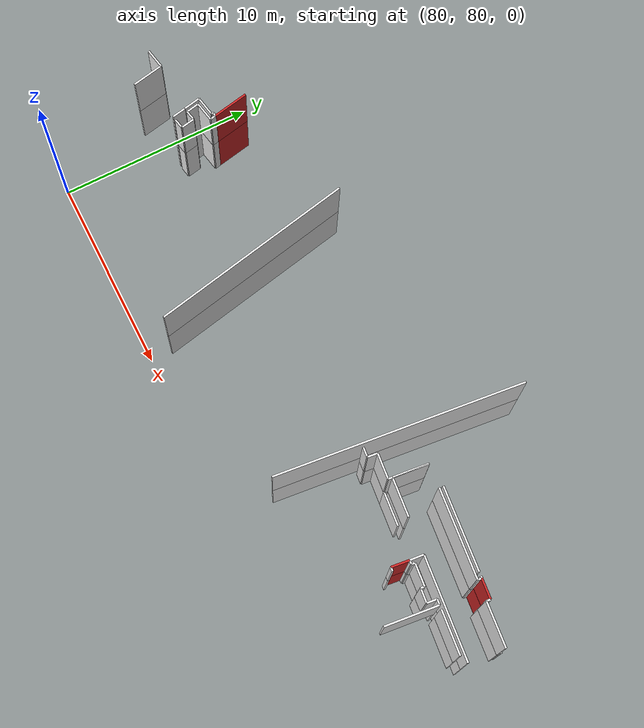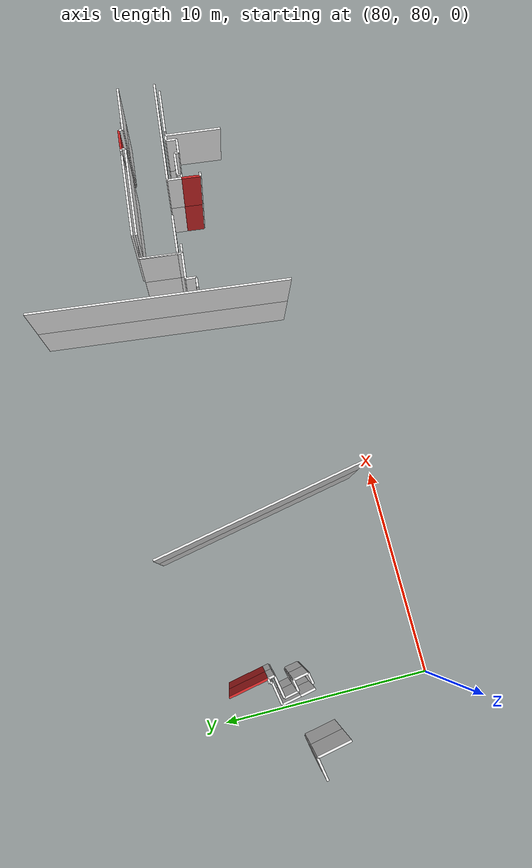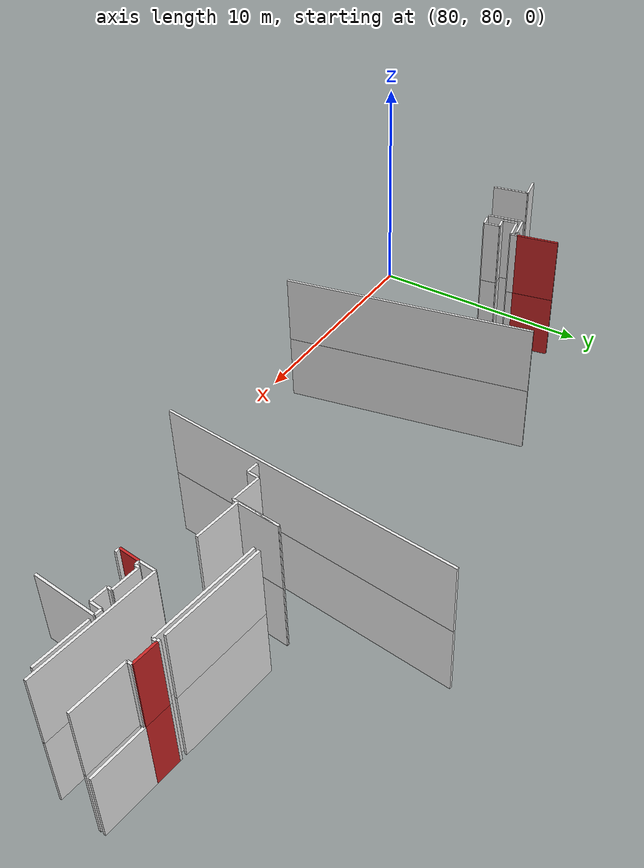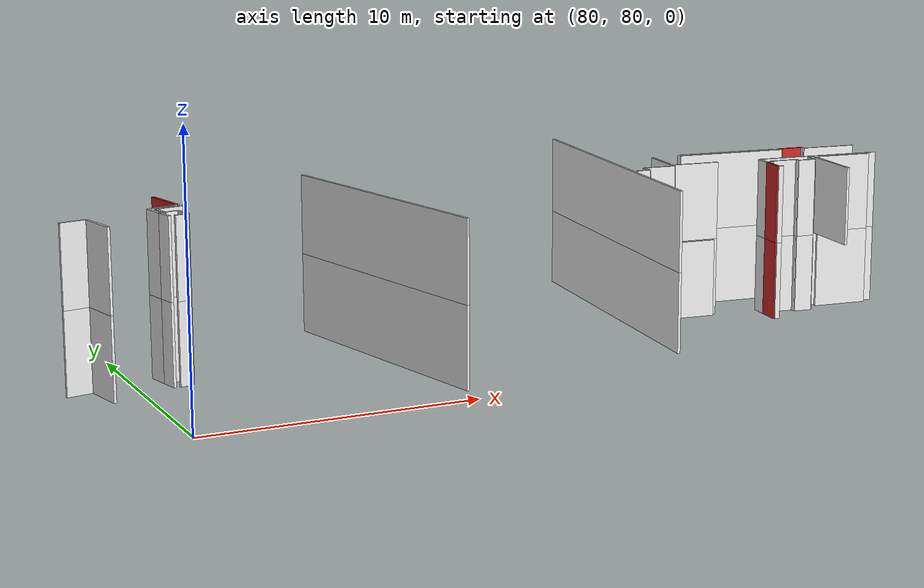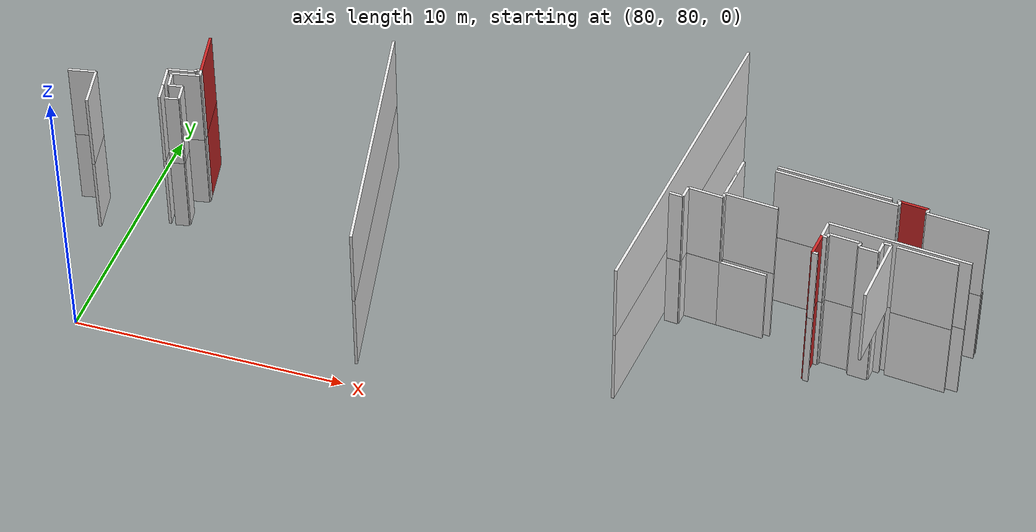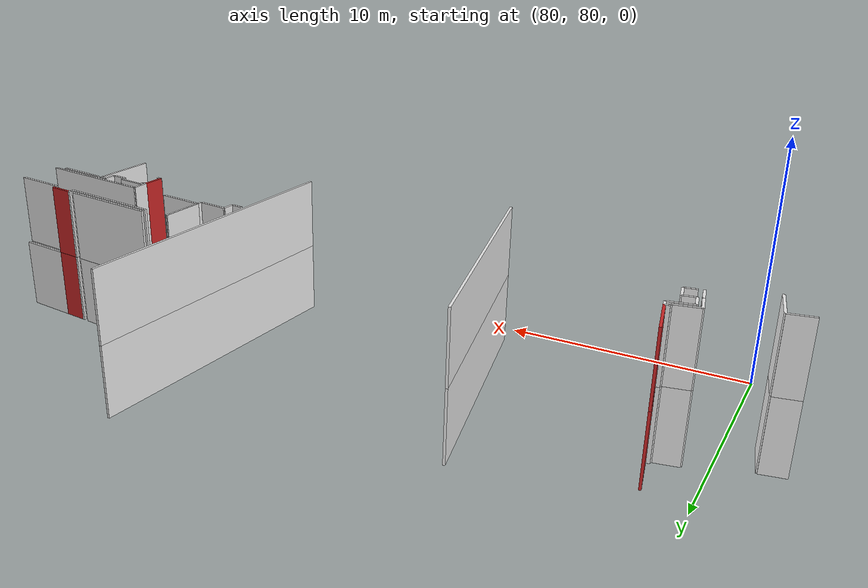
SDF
<sdf version="1.6">
 <world name="default">
  <model name="wall_105.1_85.5_1.5">
   <static>true</static>
   <pose>105.10999999998603 85.53499999991618 1.5 0 0 1.4589060606653106</pose>
   <link name="link">
    <visual name="visual">
     <geometry><box><size>0.895600357429266 0.1 3</size></box></geometry>
     <material>
      <script><uri>file://media/materials/scripts/gazebo.material</uri><name>Gazebo/Red</name></script>
     </material>
    </visual>
    <collision name="collision"><geometry><box><size>0.895600357429266 0.1 3</size></box></geometry></collision>
   </link>
  </model>
  <model name="wall_107.8_88.4_1.5">
   <static>true</static>
   <pose>107.78999999997905 88.4000000001397 1.5 0 0 -0.09966865258337218</pose>
   <link name="link">
    <visual name="visual">
     <geometry><box><size>1.004987562121356 0.1 3</size></box></geometry>
     <material>
      <script><uri>file://media/materials/scripts/gazebo.material</uri><name>Gazebo/Red</name></script>
     </material>
    </visual>
    <collision name="collision"><geometry><box><size>1.004987562121356 0.1 3</size></box></geometry></collision>
   </link>
  </model>
  <model name="wall_81.9_88.5_1.5">
   <static>true</static>
   <pose>81.91500000000815 88.53499999991618 1.5 0 0 -1.3755746765469539</pose>
   <link name="link">
    <visual name="visual">
     <geometry><box><size>1.8042727066855455 0.1 3</size></box></geometry>
     <material>
      <script><uri>file://media/materials/scripts/gazebo.material</uri><name>Gazebo/Red</name></script>
     </material>
    </visual>
    <collision name="collision"><geometry><box><size>1.8042727066855455 0.1 3</size></box></geometry></collision>
   </link>
  </model>
  <model name="wall_105.1_85.5_4.5">
   <static>true</static>
   <pose>105.10999999998603 85.53499999991618 4.5 0 0 1.4589060606653106</pose>
   <link name="link">
    <visual name="visual">
     <geometry><box><size>0.895600357429266 0.1 3</size></box></geometry>
     <material>
      <script><uri>file://media/materials/scripts/gazebo.material</uri><name>Gazebo/Red</name></script>
     </material>
    </visual>
    <collision name="collision"><geometry><box><size>0.895600357429266 0.1 3</size></box></geometry></collision>
   </link>
  </model>
  <model name="wall_107.8_88.4_4.5">
   <static>true</static>
   <pose>107.78999999997905 88.4000000001397 4.5 0 0 -0.09966865258337218</pose>
   <link name="link">
    <visual name="visual">
     <geometry><box><size>1.004987562121356 0.1 3</size></box></geometry>
     <material>
      <script><uri>file://media/materials/scripts/gazebo.material</uri><name>Gazebo/Red</name></script>
     </material>
    </visual>
    <collision name="collision"><geometry><box><size>1.004987562121356 0.1 3</size></box></geometry></collision>
   </link>
  </model>
  <model name="wall_81.9_88.5_4.5">
   <static>true</static>
   <pose>81.91500000000815 88.53499999991618 4.5 0 0 -1.3755746765469539</pose>
   <link name="link">
    <visual name="visual">
     <geometry><box><size>1.8042727066855455 0.1 3</size></box></geometry>
     <material>
      <script><uri>file://media/materials/scripts/gazebo.material</uri><name>Gazebo/Red</name></script>
     </material>
    </visual>
    <collision name="collision"><geometry><box><size>1.8042727066855455 0.1 3</size></box></geometry></collision>
   </link>
  </model>
  <model name="wall_108.8_86.1_1.5">
   <static>true</static>
   <pose>108.77499999999418 86.10000000009313 1.5 0 0 -0.10103726465713746</pose>
   <link name="link">
    <visual name="visual">
     <geometry><box><size>2.18112356362828 0.1 3</size></box></geometry>
     <material>
      <script><uri>file://media/materials/scripts/gazebo.material</uri><name>Gazebo/White</name></script>
     </material>
    </visual>
    <collision name="collision"><geometry><box><size>2.18112356362828 0.1 3</size></box></geometry></collision>
   </link>
  </model>
  <model name="wall_105.3_86.0_1.5">
   <static>true</static>
   <pose>105.25499999997555 85.96999999997206 1.5 0 0 -0.10487693882591773</pose>
   <link name="link">
    <visual name="visual">
     <geometry><box><size>0.19104973174969345 0.1 3</size></box></geometry>
     <material>
      <script><uri>file://media/materials/scripts/gazebo.material</uri><name>Gazebo/White</name></script>
     </material>
    </visual>
    <collision name="collision"><geometry><box><size>0.19104973174969345 0.1 3</size></box></geometry></collision>
   </link>
  </model>
  <model name="wall_105.4_86.0_1.5">
   <static>true</static>
   <pose>105.35999999998603 86.0449999999255 1.5 0 0 1.4536875820691035</pose>
   <link name="link">
    <visual name="visual">
     <geometry><box><size>0.17117242761441775 0.1 3</size></box></geometry>
     <material>
      <script><uri>file://media/materials/scripts/gazebo.material</uri><name>Gazebo/White</name></script>
     </material>
    </visual>
    <collision name="collision"><geometry><box><size>0.17117242761441775 0.1 3</size></box></geometry></collision>
   </link>
  </model>
  <model name="wall_105.9_86.1_1.5">
   <static>true</static>
   <pose>105.92999999999302 86.07499999995343 1.5 0 0 -0.097900307623563</pose>
   <link name="link">
    <visual name="visual">
     <geometry><box><size>1.1253888216793715 0.1 3</size></box></geometry>
     <material>
      <script><uri>file://media/materials/scripts/gazebo.material</uri><name>Gazebo/White</name></script>
     </material>
    </visual>
    <collision name="collision"><geometry><box><size>1.1253888216793715 0.1 3</size></box></geometry></collision>
   </link>
  </model>
  <model name="wall_106.5_85.9_1.5">
   <static>true</static>
   <pose>106.47999999998137 85.92500000004657 1.5 0 0 -1.675673265652709</pose>
   <link name="link">
    <visual name="visual">
     <geometry><box><size>0.19104973169180559 0.1 3</size></box></geometry>
     <material>
      <script><uri>file://media/materials/scripts/gazebo.material</uri><name>Gazebo/White</name></script>
     </material>
    </visual>
    <collision name="collision"><geometry><box><size>0.19104973169180559 0.1 3</size></box></geometry></collision>
   </link>
  </model>
  <model name="wall_106.8_85.8_1.5">
   <static>true</static>
   <pose>106.81999999997788 85.7949999999255 1.5 0 0 -0.09966865291104755</pose>
   <link name="link">
    <visual name="visual">
     <geometry><box><size>0.7034912935197005 0.1 3</size></box></geometry>
     <material>
      <script><uri>file://media/materials/scripts/gazebo.material</uri><name>Gazebo/White</name></script>
     </material>
    </visual>
    <collision name="collision"><geometry><box><size>0.7034912935197005 0.1 3</size></box></geometry></collision>
   </link>
  </model>
  <model name="wall_107.2_86.0_1.5">
   <static>true</static>
   <pose>107.19499999997788 86.00999999977648 1.5 0 0 1.4711276743267871</pose>
   <link name="link">
    <visual name="visual">
     <geometry><box><size>0.5024937810548861 0.1 3</size></box></geometry>
     <material>
      <script><uri>file://media/materials/scripts/gazebo.material</uri><name>Gazebo/White</name></script>
     </material>
    </visual>
    <collision name="collision"><geometry><box><size>0.5024937810548861 0.1 3</size></box></geometry></collision>
   </link>
  </model>
  <model name="wall_107.4_86.2_1.5">
   <static>true</static>
   <pose>107.35999999998603 86.24499999987893 1.5 0 0 -0.10673567191511722</pose>
   <link name="link">
    <visual name="visual">
     <geometry><box><size>0.28160255681252744 0.1 3</size></box></geometry>
     <material>
      <script><uri>file://media/materials/scripts/gazebo.material</uri><name>Gazebo/White</name></script>
     </material>
    </visual>
    <collision name="collision"><geometry><box><size>0.28160255681252744 0.1 3</size></box></geometry></collision>
   </link>
  </model>
  <model name="wall_105.2_85.1_1.5">
   <static>true</static>
   <pose>105.16000000000349 85.07999999984168 1.5 0 0 3.0419240010121844</pose>
   <link name="link">
    <visual name="visual">
     <geometry><box><size>0.20099751243585498 0.1 3</size></box></geometry>
     <material>
      <script><uri>file://media/materials/scripts/gazebo.material</uri><name>Gazebo/White</name></script>
     </material>
    </visual>
    <collision name="collision"><geometry><box><size>0.20099751243585498 0.1 3</size></box></geometry></collision>
   </link>
  </model>
  <model name="wall_104.9_88.7_1.5">
   <static>true</static>
   <pose>104.94000000000233 88.68500000005588 1.5 0 0 -0.09918799887508435</pose>
   <link name="link">
    <visual name="visual">
     <geometry><box><size>4.1403502267421555 0.1 3</size></box></geometry>
     <material>
      <script><uri>file://media/materials/scripts/gazebo.material</uri><name>Gazebo/White</name></script>
     </material>
    </visual>
    <collision name="collision"><geometry><box><size>4.1403502267421555 0.1 3</size></box></geometry></collision>
   </link>
  </model>
  <model name="wall_109.4_88.2_1.5">
   <static>true</static>
   <pose>109.38499999998021 88.23999999999069 1.5 0 0 -0.10012073211888467</pose>
   <link name="link">
    <visual name="visual">
     <geometry><box><size>2.201022489685271 0.1 3</size></box></geometry>
     <material>
      <script><uri>file://media/materials/scripts/gazebo.material</uri><name>Gazebo/White</name></script>
     </material>
    </visual>
    <collision name="collision"><geometry><box><size>2.201022489685271 0.1 3</size></box></geometry></collision>
   </link>
  </model>
  <model name="wall_107.2_88.5_1.5">
   <static>true</static>
   <pose>107.23999999999069 88.4550000000745 1.5 0 0 -0.09966865030117082</pose>
   <link name="link">
    <visual name="visual">
     <geometry><box><size>0.10049875616580058 0.1 3</size></box></geometry>
     <material>
      <script><uri>file://media/materials/scripts/gazebo.material</uri><name>Gazebo/White</name></script>
     </material>
    </visual>
    <collision name="collision"><geometry><box><size>0.10049875616580058 0.1 3</size></box></geometry></collision>
   </link>
  </model>
  <model name="wall_102.4_86.7_1.5">
   <static>true</static>
   <pose>102.35000000000582 86.73499999986961 1.5 0 0 3.0430754111122615</pose>
   <link name="link">
    <visual name="visual">
     <geometry><box><size>1.728380745113411 0.1 3</size></box></geometry>
     <material>
      <script><uri>file://media/materials/scripts/gazebo.material</uri><name>Gazebo/White</name></script>
     </material>
    </visual>
    <collision name="collision"><geometry><box><size>1.728380745113411 0.1 3</size></box></geometry></collision>
   </link>
  </model>
  <model name="wall_100.9_86.9_1.5">
   <static>true</static>
   <pose>100.85999999998603 86.88500000000931 1.5 0 0 3.038781827344916</pose>
   <link name="link">
    <visual name="visual">
     <geometry><box><size>1.2666885963469807 0.1 3</size></box></geometry>
     <material>
      <script><uri>file://media/materials/scripts/gazebo.material</uri><name>Gazebo/White</name></script>
     </material>
    </visual>
    <collision name="collision"><geometry><box><size>1.2666885963469807 0.1 3</size></box></geometry></collision>
   </link>
  </model>
  <model name="wall_100.2_86.7_1.5">
   <static>true</static>
   <pose>100.2049999999872 86.70000000018626 1.5 0 0 -1.6704649792630062</pose>
   <link name="link">
    <visual name="visual">
     <geometry><box><size>0.5024937810548861 0.1 3</size></box></geometry>
     <material>
      <script><uri>file://media/materials/scripts/gazebo.material</uri><name>Gazebo/White</name></script>
     </material>
    </visual>
    <collision name="collision"><geometry><box><size>0.5024937810548861 0.1 3</size></box></geometry></collision>
   </link>
  </model>
  <model name="wall_99.9_86.5_1.5">
   <static>true</static>
   <pose>99.93499999999767 86.47500000009313 1.5 0 0 3.039903802201011</pose>
   <link name="link">
    <visual name="visual">
     <geometry><box><size>0.49254441421281653 0.1 3</size></box></geometry>
     <material>
      <script><uri>file://media/materials/scripts/gazebo.material</uri><name>Gazebo/White</name></script>
     </material>
    </visual>
    <collision name="collision"><geometry><box><size>0.49254441421281653 0.1 3</size></box></geometry></collision>
   </link>
  </model>
  <model name="wall_102.5_86.9_1.5">
   <static>true</static>
   <pose>102.47000000000116 86.93499999982305 1.5 0 0 3.0429554602760422</pose>
   <link name="link">
    <visual name="visual">
     <geometry><box><size>1.929378138135752 0.1 3</size></box></geometry>
     <material>
      <script><uri>file://media/materials/scripts/gazebo.material</uri><name>Gazebo/White</name></script>
     </material>
    </visual>
    <collision name="collision"><geometry><box><size>1.929378138135752 0.1 3</size></box></geometry></collision>
   </link>
  </model>
  <model name="wall_101.6_87.9_1.5">
   <static>true</static>
   <pose>101.60000000000582 87.9199999999255 1.5 0 0 1.470015327728778</pose>
   <link name="link">
    <visual name="visual">
     <geometry><box><size>1.789077975082648 0.1 3</size></box></geometry>
     <material>
      <script><uri>file://media/materials/scripts/gazebo.material</uri><name>Gazebo/White</name></script>
     </material>
    </visual>
    <collision name="collision"><geometry><box><size>1.789077975082648 0.1 3</size></box></geometry></collision>
   </link>
  </model>
  <model name="wall_105.1_88.5_1.5">
   <static>true</static>
   <pose>105.06500000000233 88.46999999997206 1.5 0 0 -0.099444135193827</pose>
   <link name="link">
    <visual name="visual">
     <geometry><box><size>4.431895756923703 0.1 3</size></box></geometry>
     <material>
      <script><uri>file://media/materials/scripts/gazebo.material</uri><name>Gazebo/White</name></script>
     </material>
    </visual>
    <collision name="collision"><geometry><box><size>4.431895756923703 0.1 3</size></box></geometry></collision>
   </link>
  </model>
  <model name="wall_107.3_88.4_1.5">
   <static>true</static>
   <pose>107.27999999999884 88.35000000009313 1.5 0 0 1.4711276745918913</pose>
   <link name="link">
    <visual name="visual">
     <geometry><box><size>0.20099751260381943 0.1 3</size></box></geometry>
     <material>
      <script><uri>file://media/materials/scripts/gazebo.material</uri><name>Gazebo/White</name></script>
     </material>
    </visual>
    <collision name="collision"><geometry><box><size>0.20099751260381943 0.1 3</size></box></geometry></collision>
   </link>
  </model>
  <model name="wall_108.3_88.2_1.5">
   <static>true</static>
   <pose>108.27999999999884 88.25 1.5 0 0 -1.6704649789979018</pose>
   <link name="link">
    <visual name="visual">
     <geometry><box><size>0.20099751260381943 0.1 3</size></box></geometry>
     <material>
      <script><uri>file://media/materials/scripts/gazebo.material</uri><name>Gazebo/White</name></script>
     </material>
    </visual>
    <collision name="collision"><geometry><box><size>0.20099751260381943 0.1 3</size></box></geometry></collision>
   </link>
  </model>
  <model name="wall_109.4_88.0_1.5">
   <static>true</static>
   <pose>109.36500000001979 88.04000000003725 1.5 0 0 -0.10012073190837828</pose>
   <link name="link">
    <visual name="visual">
     <geometry><box><size>2.2010224896387265 0.1 3</size></box></geometry>
     <material>
      <script><uri>file://media/materials/scripts/gazebo.material</uri><name>Gazebo/White</name></script>
     </material>
    </visual>
    <collision name="collision"><geometry><box><size>2.2010224896387265 0.1 3</size></box></geometry></collision>
   </link>
  </model>
  <model name="wall_107.8_86.4_1.5">
   <static>true</static>
   <pose>107.75 86.40500000002794 1.5 0 0 3.041141375502892</pose>
   <link name="link">
    <visual name="visual">
     <geometry><box><size>5.08563663672627 0.1 3</size></box></geometry>
     <material>
      <script><uri>file://media/materials/scripts/gazebo.material</uri><name>Gazebo/White</name></script>
     </material>
    </visual>
    <collision name="collision"><geometry><box><size>5.08563663672627 0.1 3</size></box></geometry></collision>
   </link>
  </model>
  <model name="wall_105.2_86.3_1.5">
   <static>true</static>
   <pose>105.18999999997322 86.32000000006519 1.5 0 0 -1.6588037002976554</pose>
   <link name="link">
    <visual name="visual">
     <geometry><box><size>0.6826419268018251 0.1 3</size></box></geometry>
     <material>
      <script><uri>file://media/materials/scripts/gazebo.material</uri><name>Gazebo/White</name></script>
     </material>
    </visual>
    <collision name="collision"><geometry><box><size>0.6826419268018251 0.1 3</size></box></geometry></collision>
   </link>
  </model>
  <model name="wall_78.7_85.7_1.5">
   <static>true</static>
   <pose>78.71499999999651 85.65999999991618 1.5 0 0 1.7669588416387134</pose>
   <link name="link">
    <visual name="visual">
     <geometry><box><size>1.5905030651252767 0.1 3</size></box></geometry>
     <material>
      <script><uri>file://media/materials/scripts/gazebo.material</uri><name>Gazebo/White</name></script>
     </material>
    </visual>
    <collision name="collision"><geometry><box><size>1.5905030651252767 0.1 3</size></box></geometry></collision>
   </link>
  </model>
  <model name="wall_78.1_86.3_1.5">
   <static>true</static>
   <pose>78.07000000000698 86.34499999997206 1.5 0 0 -2.950090935171577</pose>
   <link name="link">
    <visual name="visual">
     <geometry><box><size>0.9982484660355146 0.1 3</size></box></geometry>
     <material>
      <script><uri>file://media/materials/scripts/gazebo.material</uri><name>Gazebo/White</name></script>
     </material>
    </visual>
    <collision name="collision"><geometry><box><size>0.9982484660355146 0.1 3</size></box></geometry></collision>
   </link>
  </model>
  <model name="wall_82.0_87.6_1.5">
   <static>true</static>
   <pose>81.99500000002445 87.63500000000931 1.5 0 0 -2.9849907776618085</pose>
   <link name="link">
    <visual name="visual">
     <geometry><box><size>0.19235384058705793 0.1 3</size></box></geometry>
     <material>
      <script><uri>file://media/materials/scripts/gazebo.material</uri><name>Gazebo/White</name></script>
     </material>
    </visual>
    <collision name="collision"><geometry><box><size>0.19235384058705793 0.1 3</size></box></geometry></collision>
   </link>
  </model>
  <model name="wall_81.9_87.6_1.5">
   <static>true</static>
   <pose>81.91000000000349 87.57000000006519 1.5 0 0 -1.3734007675047049</pose>
   <link name="link">
    <visual name="visual">
     <geometry><box><size>0.10198039035541688 0.1 3</size></box></geometry>
     <material>
      <script><uri>file://media/materials/scripts/gazebo.material</uri><name>Gazebo/White</name></script>
     </material>
    </visual>
    <collision name="collision"><geometry><box><size>0.10198039035541688 0.1 3</size></box></geometry></collision>
   </link>
  </model>
  <model name="wall_81.4_87.4_1.5">
   <static>true</static>
   <pose>81.42499999998836 87.42500000004657 1.5 0 0 -2.9519790378681012</pose>
   <link name="link">
    <visual name="visual">
     <geometry><box><size>1.0080674580405449 0.1 3</size></box></geometry>
     <material>
      <script><uri>file://media/materials/scripts/gazebo.material</uri><name>Gazebo/White</name></script>
     </material>
    </visual>
    <collision name="collision"><geometry><box><size>1.0080674580405449 0.1 3</size></box></geometry></collision>
   </link>
  </model>
  <model name="wall_81.0_86.9_1.5">
   <static>true</static>
   <pose>81.01499999998487 86.91000000014901 1.5 0 0 -1.3711124414039455</pose>
   <link name="link">
    <visual name="visual">
     <geometry><box><size>0.8570297542933495 0.1 3</size></box></geometry>
     <material>
      <script><uri>file://media/materials/scripts/gazebo.material</uri><name>Gazebo/White</name></script>
     </material>
    </visual>
    <collision name="collision"><geometry><box><size>0.8570297542933495 0.1 3</size></box></geometry></collision>
   </link>
  </model>
  <model name="wall_81.2_86.2_1.5">
   <static>true</static>
   <pose>81.16499999997905 86.1500000001397 1.5 0 0 -1.3818991459561358</pose>
   <link name="link">
    <visual name="visual">
     <geometry><box><size>0.6923149573923696 0.1 3</size></box></geometry>
     <material>
      <script><uri>file://media/materials/scripts/gazebo.material</uri><name>Gazebo/White</name></script>
     </material>
    </visual>
    <collision name="collision"><geometry><box><size>0.6923149573923696 0.1 3</size></box></geometry></collision>
   </link>
  </model>
  <model name="wall_99.7_88.4_1.5">
   <static>true</static>
   <pose>99.69000000000233 88.375 1.5 0 0 -1.6724688239947545</pose>
   <link name="link">
    <visual name="visual">
     <geometry><box><size>12.414108908448563 0.1 3</size></box></geometry>
     <material>
      <script><uri>file://media/materials/scripts/gazebo.material</uri><name>Gazebo/White</name></script>
     </material>
    </visual>
    <collision name="collision"><geometry><box><size>12.414108908448563 0.1 3</size></box></geometry></collision>
   </link>
  </model>
  <model name="wall_89.1_86.2_1.5">
   <static>true</static>
   <pose>89.07499999998254 86.17500000004657 1.5 0 0 1.7693239616328174</pose>
   <link name="link">
    <visual name="visual">
     <geometry><box><size>10.394161822812528 0.1 3</size></box></geometry>
     <material>
      <script><uri>file://media/materials/scripts/gazebo.material</uri><name>Gazebo/White</name></script>
     </material>
    </visual>
    <collision name="collision"><geometry><box><size>10.394161822812528 0.1 3</size></box></geometry></collision>
   </link>
  </model>
  <model name="wall_82.1_87.5_1.5">
   <static>true</static>
   <pose>82.12000000002445 87.50499999988824 1.5 0 0 -1.3667783472355337</pose>
   <link name="link">
    <visual name="visual">
     <geometry><box><size>0.2961418579352255 0.1 3</size></box></geometry>
     <material>
      <script><uri>file://media/materials/scripts/gazebo.material</uri><name>Gazebo/White</name></script>
     </material>
    </visual>
    <collision name="collision"><geometry><box><size>0.2961418579352255 0.1 3</size></box></geometry></collision>
   </link>
  </model>
  <model name="wall_81.7_87.3_1.5">
   <static>true</static>
   <pose>81.66000000000349 87.26499999989755 1.5 0 0 -2.950090935182675</pose>
   <link name="link">
    <visual name="visual">
     <geometry><box><size>0.9982484660926583 0.1 3</size></box></geometry>
     <material>
      <script><uri>file://media/materials/scripts/gazebo.material</uri><name>Gazebo/White</name></script>
     </material>
    </visual>
    <collision name="collision"><geometry><box><size>0.9982484660926583 0.1 3</size></box></geometry></collision>
   </link>
  </model>
  <model name="wall_81.2_86.8_1.5">
   <static>true</static>
   <pose>81.23499999998603 86.8499999998603 1.5 0 0 -1.3703977730017727</pose>
   <link name="link">
    <visual name="visual">
     <geometry><box><size>0.6530696748189306 0.1 3</size></box></geometry>
     <material>
      <script><uri>file://media/materials/scripts/gazebo.material</uri><name>Gazebo/White</name></script>
     </material>
    </visual>
    <collision name="collision"><geometry><box><size>0.6530696748189306 0.1 3</size></box></geometry></collision>
   </link>
  </model>
  <model name="wall_81.5_86.6_1.5">
   <static>true</static>
   <pose>81.5449999999837 86.57999999984168 1.5 0 0 0.2013171085608308</pose>
   <link name="link">
    <visual name="visual">
     <geometry><box><size>0.5000999900114971 0.1 3</size></box></geometry>
     <material>
      <script><uri>file://media/materials/scripts/gazebo.material</uri><name>Gazebo/White</name></script>
     </material>
    </visual>
    <collision name="collision"><geometry><box><size>0.5000999900114971 0.1 3</size></box></geometry></collision>
   </link>
  </model>
  <model name="wall_81.9_86.3_1.5">
   <static>true</static>
   <pose>81.85499999998137 86.29000000003725 1.5 0 0 -1.3818991458298349</pose>
   <link name="link">
    <visual name="visual">
     <geometry><box><size>0.6923149569349915 0.1 3</size></box></geometry>
     <material>
      <script><uri>file://media/materials/scripts/gazebo.material</uri><name>Gazebo/White</name></script>
     </material>
    </visual>
    <collision name="collision"><geometry><box><size>0.6923149569349915 0.1 3</size></box></geometry></collision>
   </link>
  </model>
  <model name="wall_81.7_85.9_1.5">
   <static>true</static>
   <pose>81.67499999998836 85.9000000001397 1.5 0 0 -2.9402755450289626</pose>
   <link name="link">
    <visual name="visual">
     <geometry><box><size>0.5000999900114971 0.1 3</size></box></geometry>
     <material>
      <script><uri>file://media/materials/scripts/gazebo.material</uri><name>Gazebo/White</name></script>
     </material>
    </visual>
    <collision name="collision"><geometry><box><size>0.5000999900114971 0.1 3</size></box></geometry></collision>
   </link>
  </model>
  <model name="wall_101.6_87.8_1.5">
   <static>true</static>
   <pose>101.58999999999651 87.81499999994412 1.5 0 0 1.4706301619123556</pose>
   <link name="link">
    <visual name="visual">
     <geometry><box><size>2.000025000067313 0.1 3</size></box></geometry>
     <material>
      <script><uri>file://media/materials/scripts/gazebo.material</uri><name>Gazebo/White</name></script>
     </material>
    </visual>
    <collision name="collision"><geometry><box><size>2.000025000067313 0.1 3</size></box></geometry></collision>
   </link>
  </model>
  <model name="wall_108.8_86.1_4.5">
   <static>true</static>
   <pose>108.77499999999418 86.10000000009313 4.5 0 0 -0.10103726465713746</pose>
   <link name="link">
    <visual name="visual">
     <geometry><box><size>2.18112356362828 0.1 3</size></box></geometry>
     <material>
      <script><uri>file://media/materials/scripts/gazebo.material</uri><name>Gazebo/White</name></script>
     </material>
    </visual>
    <collision name="collision"><geometry><box><size>2.18112356362828 0.1 3</size></box></geometry></collision>
   </link>
  </model>
  <model name="wall_105.3_86.0_4.5">
   <static>true</static>
   <pose>105.25499999997555 85.96999999997206 4.5 0 0 -0.10487693882591773</pose>
   <link name="link">
    <visual name="visual">
     <geometry><box><size>0.19104973174969345 0.1 3</size></box></geometry>
     <material>
      <script><uri>file://media/materials/scripts/gazebo.material</uri><name>Gazebo/White</name></script>
     </material>
    </visual>
    <collision name="collision"><geometry><box><size>0.19104973174969345 0.1 3</size></box></geometry></collision>
   </link>
  </model>
  <model name="wall_105.4_86.0_4.5">
   <static>true</static>
   <pose>105.35999999998603 86.0449999999255 4.5 0 0 1.4536875820691035</pose>
   <link name="link">
    <visual name="visual">
     <geometry><box><size>0.17117242761441775 0.1 3</size></box></geometry>
     <material>
      <script><uri>file://media/materials/scripts/gazebo.material</uri><name>Gazebo/White</name></script>
     </material>
    </visual>
    <collision name="collision"><geometry><box><size>0.17117242761441775 0.1 3</size></box></geometry></collision>
   </link>
  </model>
  <model name="wall_105.9_86.1_4.5">
   <static>true</static>
   <pose>105.92999999999302 86.07499999995343 4.5 0 0 -0.097900307623563</pose>
   <link name="link">
    <visual name="visual">
     <geometry><box><size>1.1253888216793715 0.1 3</size></box></geometry>
     <material>
      <script><uri>file://media/materials/scripts/gazebo.material</uri><name>Gazebo/White</name></script>
     </material>
    </visual>
    <collision name="collision"><geometry><box><size>1.1253888216793715 0.1 3</size></box></geometry></collision>
   </link>
  </model>
  <model name="wall_106.5_85.9_4.5">
   <static>true</static>
   <pose>106.47999999998137 85.92500000004657 4.5 0 0 -1.675673265652709</pose>
   <link name="link">
    <visual name="visual">
     <geometry><box><size>0.19104973169180559 0.1 3</size></box></geometry>
     <material>
      <script><uri>file://media/materials/scripts/gazebo.material</uri><name>Gazebo/White</name></script>
     </material>
    </visual>
    <collision name="collision"><geometry><box><size>0.19104973169180559 0.1 3</size></box></geometry></collision>
   </link>
  </model>
  <model name="wall_106.8_85.8_4.5">
   <static>true</static>
   <pose>106.81999999997788 85.7949999999255 4.5 0 0 -0.09966865291104755</pose>
   <link name="link">
    <visual name="visual">
     <geometry><box><size>0.7034912935197005 0.1 3</size></box></geometry>
     <material>
      <script><uri>file://media/materials/scripts/gazebo.material</uri><name>Gazebo/White</name></script>
     </material>
    </visual>
    <collision name="collision"><geometry><box><size>0.7034912935197005 0.1 3</size></box></geometry></collision>
   </link>
  </model>
  <model name="wall_107.2_86.0_4.5">
   <static>true</static>
   <pose>107.19499999997788 86.00999999977648 4.5 0 0 1.4711276743267871</pose>
   <link name="link">
    <visual name="visual">
     <geometry><box><size>0.5024937810548861 0.1 3</size></box></geometry>
     <material>
      <script><uri>file://media/materials/scripts/gazebo.material</uri><name>Gazebo/White</name></script>
     </material>
    </visual>
    <collision name="collision"><geometry><box><size>0.5024937810548861 0.1 3</size></box></geometry></collision>
   </link>
  </model>
  <model name="wall_107.4_86.2_4.5">
   <static>true</static>
   <pose>107.35999999998603 86.24499999987893 4.5 0 0 -0.10673567191511722</pose>
   <link name="link">
    <visual name="visual">
     <geometry><box><size>0.28160255681252744 0.1 3</size></box></geometry>
     <material>
      <script><uri>file://media/materials/scripts/gazebo.material</uri><name>Gazebo/White</name></script>
     </material>
    </visual>
    <collision name="collision"><geometry><box><size>0.28160255681252744 0.1 3</size></box></geometry></collision>
   </link>
  </model>
  <model name="wall_107.4_84.9_4.5">
   <static>true</static>
   <pose>107.36499999999069 84.90999999991618 4.5 0 0 -1.6727146942777542</pose>
   <link name="link">
    <visual name="visual">
     <geometry><box><size>2.6537709020747235 0.1 3</size></box></geometry>
     <material>
      <script><uri>file://media/materials/scripts/gazebo.material</uri><name>Gazebo/White</name></script>
     </material>
    </visual>
    <collision name="collision"><geometry><box><size>2.6537709020747235 0.1 3</size></box></geometry></collision>
   </link>
  </model>
  <model name="wall_105.2_85.1_4.5">
   <static>true</static>
   <pose>105.16000000000349 85.07999999984168 4.5 0 0 3.0419240010121844</pose>
   <link name="link">
    <visual name="visual">
     <geometry><box><size>0.20099751243585498 0.1 3</size></box></geometry>
     <material>
      <script><uri>file://media/materials/scripts/gazebo.material</uri><name>Gazebo/White</name></script>
     </material>
    </visual>
    <collision name="collision"><geometry><box><size>0.20099751243585498 0.1 3</size></box></geometry></collision>
   </link>
  </model>
  <model name="wall_104.9_88.7_4.5">
   <static>true</static>
   <pose>104.94000000000233 88.68500000005588 4.5 0 0 -0.09918799887508435</pose>
   <link name="link">
    <visual name="visual">
     <geometry><box><size>4.1403502267421555 0.1 3</size></box></geometry>
     <material>
      <script><uri>file://media/materials/scripts/gazebo.material</uri><name>Gazebo/White</name></script>
     </material>
    </visual>
    <collision name="collision"><geometry><box><size>4.1403502267421555 0.1 3</size></box></geometry></collision>
   </link>
  </model>
  <model name="wall_107.2_88.5_4.5">
   <static>true</static>
   <pose>107.23999999999069 88.4550000000745 4.5 0 0 -0.09966865030117082</pose>
   <link name="link">
    <visual name="visual">
     <geometry><box><size>0.10049875616580058 0.1 3</size></box></geometry>
     <material>
      <script><uri>file://media/materials/scripts/gazebo.material</uri><name>Gazebo/White</name></script>
     </material>
    </visual>
    <collision name="collision"><geometry><box><size>0.10049875616580058 0.1 3</size></box></geometry></collision>
   </link>
  </model>
  <model name="wall_102.5_86.9_4.5">
   <static>true</static>
   <pose>102.47000000000116 86.93499999982305 4.5 0 0 3.0429554602760422</pose>
   <link name="link">
    <visual name="visual">
     <geometry><box><size>1.929378138135752 0.1 3</size></box></geometry>
     <material>
      <script><uri>file://media/materials/scripts/gazebo.material</uri><name>Gazebo/White</name></script>
     </material>
    </visual>
    <collision name="collision"><geometry><box><size>1.929378138135752 0.1 3</size></box></geometry></collision>
   </link>
  </model>
  <model name="wall_101.6_87.9_4.5">
   <static>true</static>
   <pose>101.60000000000582 87.9199999999255 4.5 0 0 1.470015327728778</pose>
   <link name="link">
    <visual name="visual">
     <geometry><box><size>1.789077975082648 0.1 3</size></box></geometry>
     <material>
      <script><uri>file://media/materials/scripts/gazebo.material</uri><name>Gazebo/White</name></script>
     </material>
    </visual>
    <collision name="collision"><geometry><box><size>1.789077975082648 0.1 3</size></box></geometry></collision>
   </link>
  </model>
  <model name="wall_105.1_88.5_4.5">
   <static>true</static>
   <pose>105.06500000000233 88.46999999997206 4.5 0 0 -0.099444135193827</pose>
   <link name="link">
    <visual name="visual">
     <geometry><box><size>4.431895756923703 0.1 3</size></box></geometry>
     <material>
      <script><uri>file://media/materials/scripts/gazebo.material</uri><name>Gazebo/White</name></script>
     </material>
    </visual>
    <collision name="collision"><geometry><box><size>4.431895756923703 0.1 3</size></box></geometry></collision>
   </link>
  </model>
  <model name="wall_107.3_88.4_4.5">
   <static>true</static>
   <pose>107.27999999999884 88.35000000009313 4.5 0 0 1.4711276745918913</pose>
   <link name="link">
    <visual name="visual">
     <geometry><box><size>0.20099751260381943 0.1 3</size></box></geometry>
     <material>
      <script><uri>file://media/materials/scripts/gazebo.material</uri><name>Gazebo/White</name></script>
     </material>
    </visual>
    <collision name="collision"><geometry><box><size>0.20099751260381943 0.1 3</size></box></geometry></collision>
   </link>
  </model>
  <model name="wall_108.3_88.2_4.5">
   <static>true</static>
   <pose>108.27999999999884 88.25 4.5 0 0 -1.6704649789979018</pose>
   <link name="link">
    <visual name="visual">
     <geometry><box><size>0.20099751260381943 0.1 3</size></box></geometry>
     <material>
      <script><uri>file://media/materials/scripts/gazebo.material</uri><name>Gazebo/White</name></script>
     </material>
    </visual>
    <collision name="collision"><geometry><box><size>0.20099751260381943 0.1 3</size></box></geometry></collision>
   </link>
  </model>
  <model name="wall_109.4_88.0_4.5">
   <static>true</static>
   <pose>109.36500000001979 88.04000000003725 4.5 0 0 -0.10012073190837828</pose>
   <link name="link">
    <visual name="visual">
     <geometry><box><size>2.2010224896387265 0.1 3</size></box></geometry>
     <material>
      <script><uri>file://media/materials/scripts/gazebo.material</uri><name>Gazebo/White</name></script>
     </material>
    </visual>
    <collision name="collision"><geometry><box><size>2.2010224896387265 0.1 3</size></box></geometry></collision>
   </link>
  </model>
  <model name="wall_107.8_86.4_4.5">
   <static>true</static>
   <pose>107.75 86.40500000002794 4.5 0 0 3.041141375502892</pose>
   <link name="link">
    <visual name="visual">
     <geometry><box><size>5.08563663672627 0.1 3</size></box></geometry>
     <material>
      <script><uri>file://media/materials/scripts/gazebo.material</uri><name>Gazebo/White</name></script>
     </material>
    </visual>
    <collision name="collision"><geometry><box><size>5.08563663672627 0.1 3</size></box></geometry></collision>
   </link>
  </model>
  <model name="wall_105.2_86.3_4.5">
   <static>true</static>
   <pose>105.18999999997322 86.32000000006519 4.5 0 0 -1.6588037002976554</pose>
   <link name="link">
    <visual name="visual">
     <geometry><box><size>0.6826419268018251 0.1 3</size></box></geometry>
     <material>
      <script><uri>file://media/materials/scripts/gazebo.material</uri><name>Gazebo/White</name></script>
     </material>
    </visual>
    <collision name="collision"><geometry><box><size>0.6826419268018251 0.1 3</size></box></geometry></collision>
   </link>
  </model>
  <model name="wall_78.7_85.7_4.5">
   <static>true</static>
   <pose>78.71499999999651 85.65999999991618 4.5 0 0 1.7669588416387134</pose>
   <link name="link">
    <visual name="visual">
     <geometry><box><size>1.5905030651252767 0.1 3</size></box></geometry>
     <material>
      <script><uri>file://media/materials/scripts/gazebo.material</uri><name>Gazebo/White</name></script>
     </material>
    </visual>
    <collision name="collision"><geometry><box><size>1.5905030651252767 0.1 3</size></box></geometry></collision>
   </link>
  </model>
  <model name="wall_78.1_86.3_4.5">
   <static>true</static>
   <pose>78.07000000000698 86.34499999997206 4.5 0 0 -2.950090935171577</pose>
   <link name="link">
    <visual name="visual">
     <geometry><box><size>0.9982484660355146 0.1 3</size></box></geometry>
     <material>
      <script><uri>file://media/materials/scripts/gazebo.material</uri><name>Gazebo/White</name></script>
     </material>
    </visual>
    <collision name="collision"><geometry><box><size>0.9982484660355146 0.1 3</size></box></geometry></collision>
   </link>
  </model>
  <model name="wall_82.0_87.6_4.5">
   <static>true</static>
   <pose>81.99500000002445 87.63500000000931 4.5 0 0 -2.9849907776618085</pose>
   <link name="link">
    <visual name="visual">
     <geometry><box><size>0.19235384058705793 0.1 3</size></box></geometry>
     <material>
      <script><uri>file://media/materials/scripts/gazebo.material</uri><name>Gazebo/White</name></script>
     </material>
    </visual>
    <collision name="collision"><geometry><box><size>0.19235384058705793 0.1 3</size></box></geometry></collision>
   </link>
  </model>
  <model name="wall_81.9_87.6_4.5">
   <static>true</static>
   <pose>81.91000000000349 87.57000000006519 4.5 0 0 -1.3734007675047049</pose>
   <link name="link">
    <visual name="visual">
     <geometry><box><size>0.10198039035541688 0.1 3</size></box></geometry>
     <material>
      <script><uri>file://media/materials/scripts/gazebo.material</uri><name>Gazebo/White</name></script>
     </material>
    </visual>
    <collision name="collision"><geometry><box><size>0.10198039035541688 0.1 3</size></box></geometry></collision>
   </link>
  </model>
  <model name="wall_81.4_87.4_4.5">
   <static>true</static>
   <pose>81.42499999998836 87.42500000004657 4.5 0 0 -2.9519790378681012</pose>
   <link name="link">
    <visual name="visual">
     <geometry><box><size>1.0080674580405449 0.1 3</size></box></geometry>
     <material>
      <script><uri>file://media/materials/scripts/gazebo.material</uri><name>Gazebo/White</name></script>
     </material>
    </visual>
    <collision name="collision"><geometry><box><size>1.0080674580405449 0.1 3</size></box></geometry></collision>
   </link>
  </model>
  <model name="wall_81.0_86.9_4.5">
   <static>true</static>
   <pose>81.01499999998487 86.91000000014901 4.5 0 0 -1.3711124414039455</pose>
   <link name="link">
    <visual name="visual">
     <geometry><box><size>0.8570297542933495 0.1 3</size></box></geometry>
     <material>
      <script><uri>file://media/materials/scripts/gazebo.material</uri><name>Gazebo/White</name></script>
     </material>
    </visual>
    <collision name="collision"><geometry><box><size>0.8570297542933495 0.1 3</size></box></geometry></collision>
   </link>
  </model>
  <model name="wall_81.2_86.2_4.5">
   <static>true</static>
   <pose>81.16499999997905 86.1500000001397 4.5 0 0 -1.3818991459561358</pose>
   <link name="link">
    <visual name="visual">
     <geometry><box><size>0.6923149573923696 0.1 3</size></box></geometry>
     <material>
      <script><uri>file://media/materials/scripts/gazebo.material</uri><name>Gazebo/White</name></script>
     </material>
    </visual>
    <collision name="collision"><geometry><box><size>0.6923149573923696 0.1 3</size></box></geometry></collision>
   </link>
  </model>
  <model name="wall_99.7_88.4_4.5">
   <static>true</static>
   <pose>99.69000000000233 88.375 4.5 0 0 -1.6724688239947545</pose>
   <link name="link">
    <visual name="visual">
     <geometry><box><size>12.414108908448563 0.1 3</size></box></geometry>
     <material>
      <script><uri>file://media/materials/scripts/gazebo.material</uri><name>Gazebo/White</name></script>
     </material>
    </visual>
    <collision name="collision"><geometry><box><size>12.414108908448563 0.1 3</size></box></geometry></collision>
   </link>
  </model>
  <model name="wall_89.1_86.2_4.5">
   <static>true</static>
   <pose>89.07499999998254 86.17500000004657 4.5 0 0 1.7693239616328174</pose>
   <link name="link">
    <visual name="visual">
     <geometry><box><size>10.394161822812528 0.1 3</size></box></geometry>
     <material>
      <script><uri>file://media/materials/scripts/gazebo.material</uri><name>Gazebo/White</name></script>
     </material>
    </visual>
    <collision name="collision"><geometry><box><size>10.394161822812528 0.1 3</size></box></geometry></collision>
   </link>
  </model>
  <model name="wall_82.1_87.5_4.5">
   <static>true</static>
   <pose>82.12000000002445 87.50499999988824 4.5 0 0 -1.3667783472355337</pose>
   <link name="link">
    <visual name="visual">
     <geometry><box><size>0.2961418579352255 0.1 3</size></box></geometry>
     <material>
      <script><uri>file://media/materials/scripts/gazebo.material</uri><name>Gazebo/White</name></script>
     </material>
    </visual>
    <collision name="collision"><geometry><box><size>0.2961418579352255 0.1 3</size></box></geometry></collision>
   </link>
  </model>
  <model name="wall_81.7_87.3_4.5">
   <static>true</static>
   <pose>81.66000000000349 87.26499999989755 4.5 0 0 -2.950090935182675</pose>
   <link name="link">
    <visual name="visual">
     <geometry><box><size>0.9982484660926583 0.1 3</size></box></geometry>
     <material>
      <script><uri>file://media/materials/scripts/gazebo.material</uri><name>Gazebo/White</name></script>
     </material>
    </visual>
    <collision name="collision"><geometry><box><size>0.9982484660926583 0.1 3</size></box></geometry></collision>
   </link>
  </model>
  <model name="wall_81.2_86.8_4.5">
   <static>true</static>
   <pose>81.23499999998603 86.8499999998603 4.5 0 0 -1.3703977730017727</pose>
   <link name="link">
    <visual name="visual">
     <geometry><box><size>0.6530696748189306 0.1 3</size></box></geometry>
     <material>
      <script><uri>file://media/materials/scripts/gazebo.material</uri><name>Gazebo/White</name></script>
     </material>
    </visual>
    <collision name="collision"><geometry><box><size>0.6530696748189306 0.1 3</size></box></geometry></collision>
   </link>
  </model>
  <model name="wall_81.5_86.6_4.5">
   <static>true</static>
   <pose>81.5449999999837 86.57999999984168 4.5 0 0 0.2013171085608308</pose>
   <link name="link">
    <visual name="visual">
     <geometry><box><size>0.5000999900114971 0.1 3</size></box></geometry>
     <material>
      <script><uri>file://media/materials/scripts/gazebo.material</uri><name>Gazebo/White</name></script>
     </material>
    </visual>
    <collision name="collision"><geometry><box><size>0.5000999900114971 0.1 3</size></box></geometry></collision>
   </link>
  </model>
  <model name="wall_81.9_86.3_4.5">
   <static>true</static>
   <pose>81.85499999998137 86.29000000003725 4.5 0 0 -1.3818991458298349</pose>
   <link name="link">
    <visual name="visual">
     <geometry><box><size>0.6923149569349915 0.1 3</size></box></geometry>
     <material>
      <script><uri>file://media/materials/scripts/gazebo.material</uri><name>Gazebo/White</name></script>
     </material>
    </visual>
    <collision name="collision"><geometry><box><size>0.6923149569349915 0.1 3</size></box></geometry></collision>
   </link>
  </model>
  <model name="wall_81.7_85.9_4.5">
   <static>true</static>
   <pose>81.67499999998836 85.9000000001397 4.5 0 0 -2.9402755450289626</pose>
   <link name="link">
    <visual name="visual">
     <geometry><box><size>0.5000999900114971 0.1 3</size></box></geometry>
     <material>
      <script><uri>file://media/materials/scripts/gazebo.material</uri><name>Gazebo/White</name></script>
     </material>
    </visual>
    <collision name="collision"><geometry><box><size>0.5000999900114971 0.1 3</size></box></geometry></collision>
   </link>
  </model>
  <model name="wall_99.9_86.5_4.5">
   <static>true</static>
   <pose>99.93499999999767 86.47500000009313 4.5 0 0 -0.1016888513887821</pose>
   <link name="link">
    <visual name="visual">
     <geometry><box><size>0.49254441421281653 0.1 3</size></box></geometry>
     <material>
      <script><uri>file://media/materials/scripts/gazebo.material</uri><name>Gazebo/White</name></script>
     </material>
    </visual>
    <collision name="collision"><geometry><box><size>0.49254441421281653 0.1 3</size></box></geometry></collision>
   </link>
  </model>
  <model name="wall_100.2_86.7_4.5">
   <static>true</static>
   <pose>100.2049999999872 86.70000000018626 4.5 0 0 1.4711276743267871</pose>
   <link name="link">
    <visual name="visual">
     <geometry><box><size>0.5024937810548861 0.1 3</size></box></geometry>
     <material>
      <script><uri>file://media/materials/scripts/gazebo.material</uri><name>Gazebo/White</name></script>
     </material>
    </visual>
    <collision name="collision"><geometry><box><size>0.5024937810548861 0.1 3</size></box></geometry></collision>
   </link>
  </model>
  <model name="wall_100.9_86.9_4.5">
   <static>true</static>
   <pose>100.85999999998603 86.88500000000931 4.5 0 0 -0.10281082624487747</pose>
   <link name="link">
    <visual name="visual">
     <geometry><box><size>1.2666885963469807 0.1 3</size></box></geometry>
     <material>
      <script><uri>file://media/materials/scripts/gazebo.material</uri><name>Gazebo/White</name></script>
     </material>
    </visual>
    <collision name="collision"><geometry><box><size>1.2666885963469807 0.1 3</size></box></geometry></collision>
   </link>
  </model>
  <model name="wall_101.6_87.8_4.5">
   <static>true</static>
   <pose>101.58999999999651 87.81499999994412 4.5 0 0 1.4706301619123556</pose>
   <link name="link">
    <visual name="visual">
     <geometry><box><size>2.000025000067313 0.1 3</size></box></geometry>
     <material>
      <script><uri>file://media/materials/scripts/gazebo.material</uri><name>Gazebo/White</name></script>
     </material>
    </visual>
    <collision name="collision"><geometry><box><size>2.000025000067313 0.1 3</size></box></geometry></collision>
   </link>
  </model>
 </world>
</sdf>
